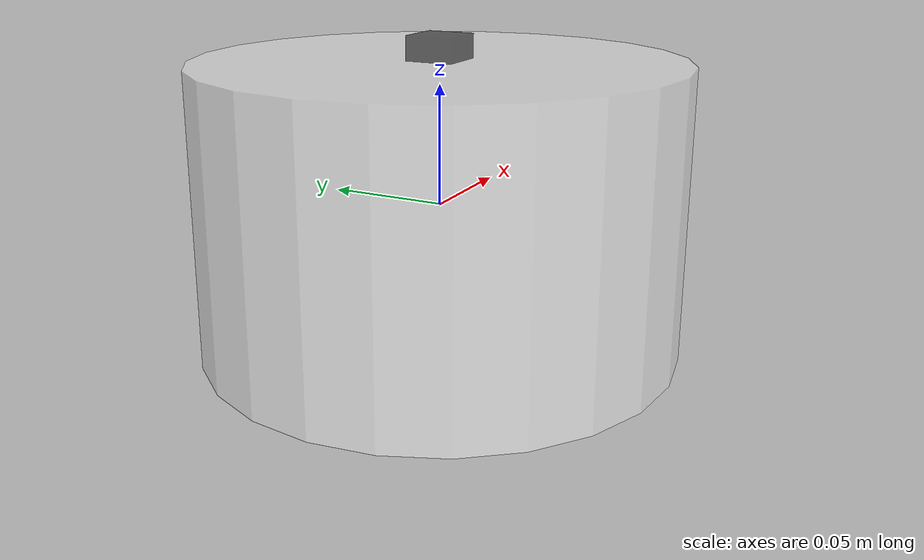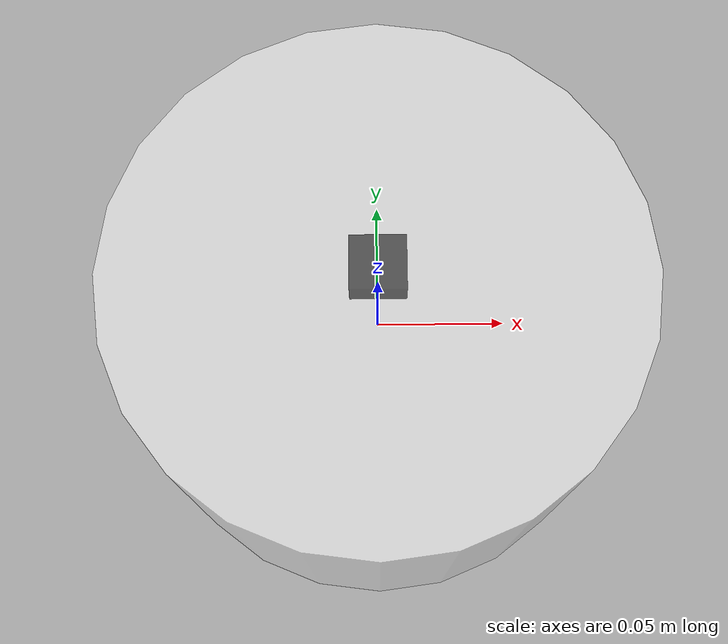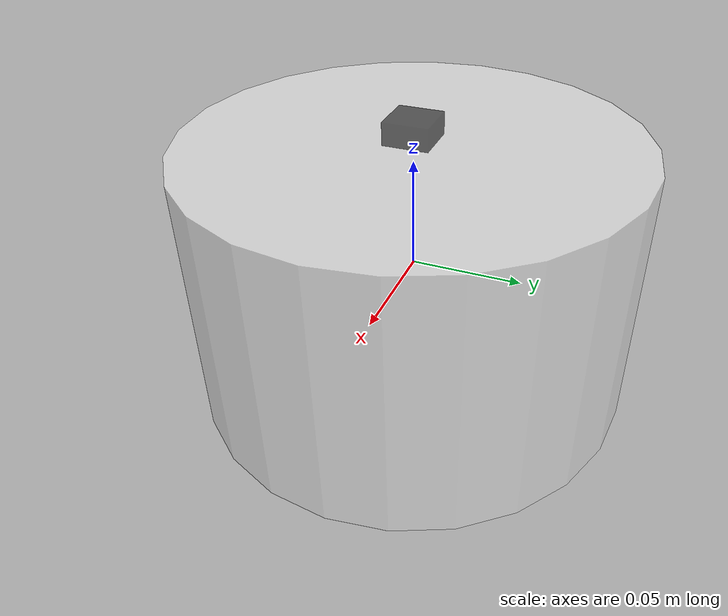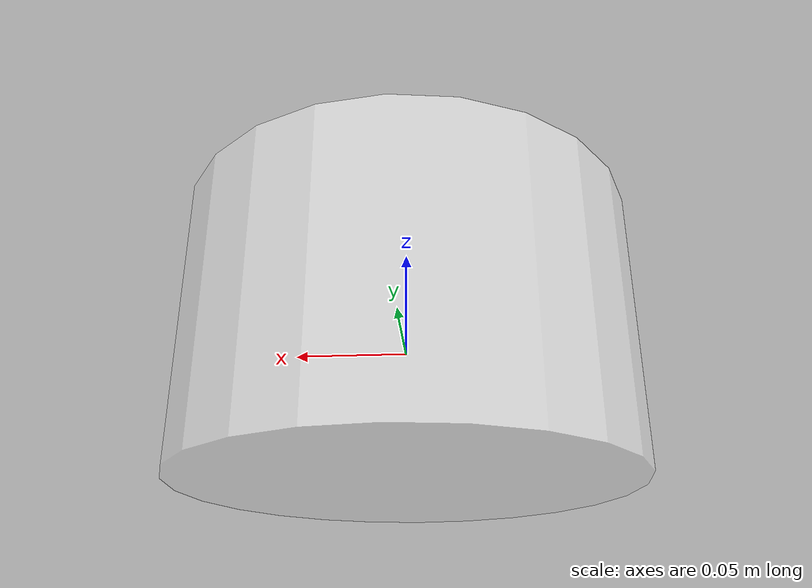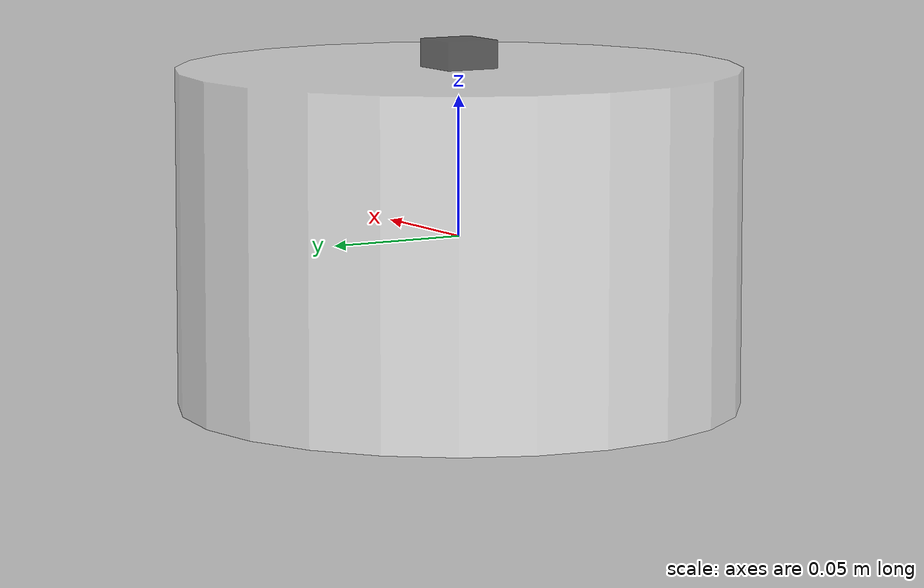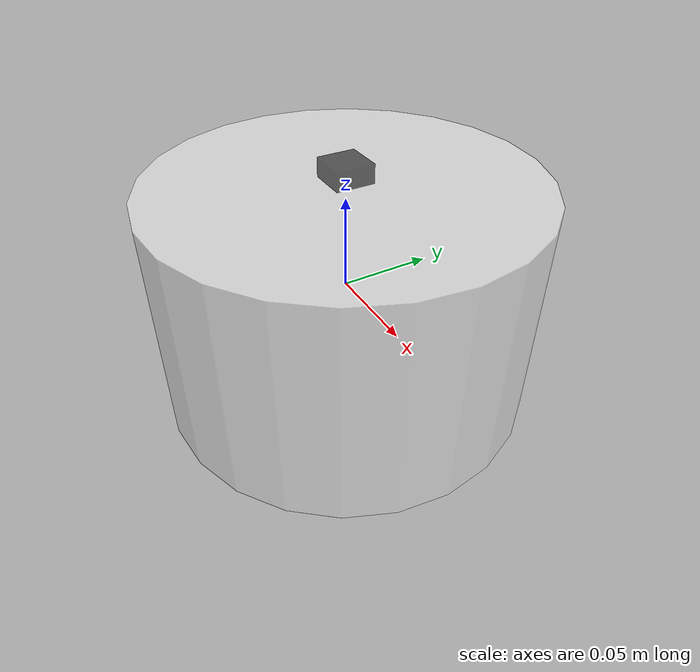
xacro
<?xml version="1.0"?>
<robot xmlns:xacro="https://www.ros.org/wiki/xacro" name="first_robot">

    <xacro:macro name="base_link" params="length radius">
        <!--Body-->
        <link name="base_link">
            <visual>
                <origin xyz="0.0 0.0 0.0" rpy="0.0 0.0 0.0"/>
                <geometry>
                    <cylinder radius="${radius}" length="${length}"/>
                </geometry>
                <material name="white">
                    <color rgba="1.0 1.0 1.0 0.5"/>
                </material>
            </visual>
        </link>
    </xacro:macro>
    <xacro:macro name="imu_link" params="name xyz">
        <!--IMU-->
        <link name="${name}_link">
            <visual>
                <origin xyz="${xyz}" rpy="0.0 0.0 0.0"/>
                <geometry>
                    <box size="0.02 0.02 0.02"/>
                </geometry>
                <material name="black">
                    <color rgba="0.0 0.0 0.0 0.5"/>
                </material>
            </visual>
        </link>
        <!--Joint-->
        <joint name="${name}_joint" type="fixed">
            <parent link="base_link"/>
            <child link="${name}_link"/>
            <origin xyz="0.0 0.0 0.03" rpy="0.0 0.0 0.0"/>
        </joint>
    </xacro:macro>
    <xacro:base_link length="0.12" radius="0.10"/>
    <xacro:imu_link name="up" xyz="0.0 0.0 0.03"/>
    <xacro:imu_link name="down" xyz="0.0 0.0 -0.03"/>
</robot>
